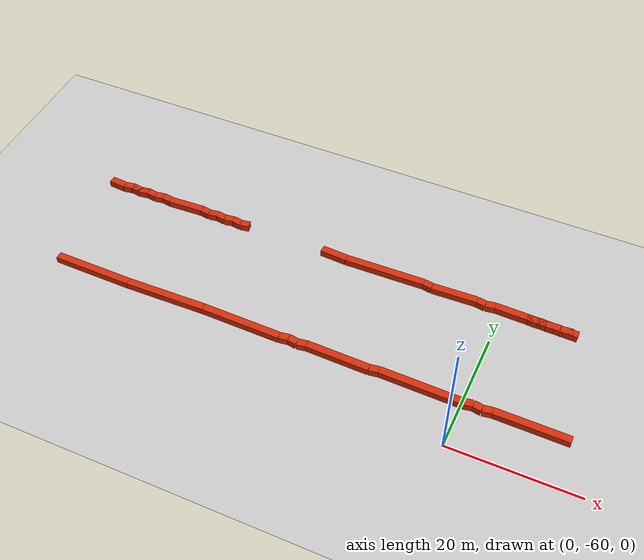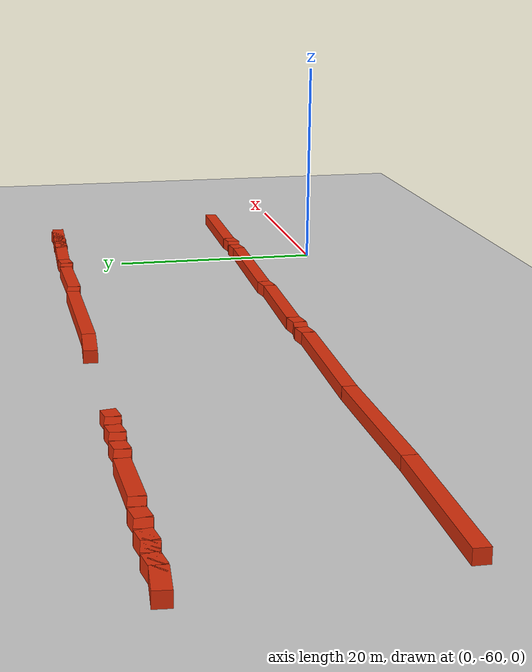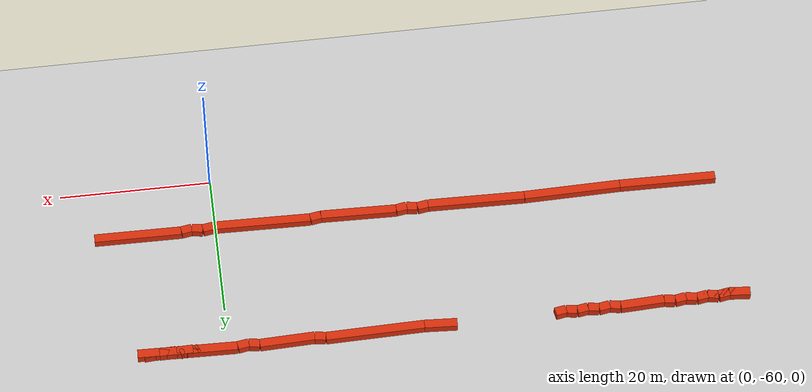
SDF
<sdf version="1.6">
 <world name="default">
  <include><uri>model://ground_plane</uri></include>
  <model name="track_inner_guardrail">
   <static>true</static>
   <link name="seg_001">
    <pose>-67.07 -34.06 0.55 0 0 -0.0841</pose>
    <collision name="col"><geometry><box><size>2.74 1.20 1.1</size></box></geometry></collision>
    <visual name="vis">
     <geometry><box><size>2.74 1.20 1.1</size></box></geometry>
     <material>
      <ambient>0.35 0.08 0.02 1</ambient>
      <diffuse>0.85 0.18 0.04 1</diffuse>
      <specular>0.2 0.2 0.2 1</specular>
     </material>
    </visual>
   </link>
   <link name="seg_002">
    <pose>-64.99 -34.04 0.55 0 0 0.1797</pose>
    <collision name="col"><geometry><box><size>1.47 1.20 1.1</size></box></geometry></collision>
    <visual name="vis">
     <geometry><box><size>1.47 1.20 1.1</size></box></geometry>
     <material>
      <ambient>0.35 0.08 0.02 1</ambient>
      <diffuse>0.85 0.18 0.04 1</diffuse>
      <specular>0.2 0.2 0.2 1</specular>
     </material>
    </visual>
   </link>
   <link name="seg_003">
    <pose>-63.54 -34.03 0.55 0 0 -0.1643</pose>
    <collision name="col"><geometry><box><size>1.47 1.20 1.1</size></box></geometry></collision>
    <visual name="vis">
     <geometry><box><size>1.47 1.20 1.1</size></box></geometry>
     <material>
      <ambient>0.35 0.08 0.02 1</ambient>
      <diffuse>0.85 0.18 0.04 1</diffuse>
      <specular>0.2 0.2 0.2 1</specular>
     </material>
    </visual>
   </link>
   <link name="seg_004">
    <pose>-62.10 -34.02 0.55 0 0 0.1773</pose>
    <collision name="col"><geometry><box><size>1.46 1.20 1.1</size></box></geometry></collision>
    <visual name="vis">
     <geometry><box><size>1.46 1.20 1.1</size></box></geometry>
     <material>
      <ambient>0.35 0.08 0.02 1</ambient>
      <diffuse>0.85 0.18 0.04 1</diffuse>
      <specular>0.2 0.2 0.2 1</specular>
     </material>
    </visual>
   </link>
   <link name="seg_005">
    <pose>-60.66 -34.01 0.55 0 0 -0.1672</pose>
    <collision name="col"><geometry><box><size>1.46 1.20 1.1</size></box></geometry></collision>
    <visual name="vis">
     <geometry><box><size>1.46 1.20 1.1</size></box></geometry>
     <material>
      <ambient>0.35 0.08 0.02 1</ambient>
      <diffuse>0.85 0.18 0.04 1</diffuse>
      <specular>0.2 0.2 0.2 1</specular>
     </material>
    </visual>
   </link>
   <link name="seg_006">
    <pose>-59.22 -34.01 0.55 0 0 0.1763</pose>
    <collision name="col"><geometry><box><size>1.46 1.20 1.1</size></box></geometry></collision>
    <visual name="vis">
     <geometry><box><size>1.46 1.20 1.1</size></box></geometry>
     <material>
      <ambient>0.35 0.08 0.02 1</ambient>
      <diffuse>0.85 0.18 0.04 1</diffuse>
      <specular>0.2 0.2 0.2 1</specular>
     </material>
    </visual>
   </link>
   <link name="seg_007">
    <pose>-57.78 -34.00 0.55 0 0 -0.1686</pose>
    <collision name="col"><geometry><box><size>1.46 1.20 1.1</size></box></geometry></collision>
    <visual name="vis">
     <geometry><box><size>1.46 1.20 1.1</size></box></geometry>
     <material>
      <ambient>0.35 0.08 0.02 1</ambient>
      <diffuse>0.85 0.18 0.04 1</diffuse>
      <specular>0.2 0.2 0.2 1</specular>
     </material>
    </visual>
   </link>
   <link name="seg_008">
    <pose>-54.19 -33.99 0.55 0 0 0.0454</pose>
    <collision name="col"><geometry><box><size>5.75 1.20 1.1</size></box></geometry></collision>
    <visual name="vis">
     <geometry><box><size>5.75 1.20 1.1</size></box></geometry>
     <material>
      <ambient>0.35 0.08 0.02 1</ambient>
      <diffuse>0.85 0.18 0.04 1</diffuse>
      <specular>0.2 0.2 0.2 1</specular>
     </material>
    </visual>
   </link>
   <link name="seg_009">
    <pose>-50.60 -33.99 0.55 0 0 -0.1711</pose>
    <collision name="col"><geometry><box><size>1.46 1.20 1.1</size></box></geometry></collision>
    <visual name="vis">
     <geometry><box><size>1.46 1.20 1.1</size></box></geometry>
     <material>
      <ambient>0.35 0.08 0.02 1</ambient>
      <diffuse>0.85 0.18 0.04 1</diffuse>
      <specular>0.2 0.2 0.2 1</specular>
     </material>
    </visual>
   </link>
   <link name="seg_010">
    <pose>-49.16 -33.99 0.55 0 0 0.1728</pose>
    <collision name="col"><geometry><box><size>1.46 1.20 1.1</size></box></geometry></collision>
    <visual name="vis">
     <geometry><box><size>1.46 1.20 1.1</size></box></geometry>
     <material>
      <ambient>0.35 0.08 0.02 1</ambient>
      <diffuse>0.85 0.18 0.04 1</diffuse>
      <specular>0.2 0.2 0.2 1</specular>
     </material>
    </visual>
   </link>
   <link name="seg_011">
    <pose>-47.73 -33.99 0.55 0 0 -0.1725</pose>
    <collision name="col"><geometry><box><size>1.46 1.20 1.1</size></box></geometry></collision>
    <visual name="vis">
     <geometry><box><size>1.46 1.20 1.1</size></box></geometry>
     <material>
      <ambient>0.35 0.08 0.02 1</ambient>
      <diffuse>0.85 0.18 0.04 1</diffuse>
      <specular>0.2 0.2 0.2 1</specular>
     </material>
    </visual>
   </link>
   <link name="seg_012">
    <pose>-46.30 -33.99 0.55 0 0 0.1732</pose>
    <collision name="col"><geometry><box><size>1.45 1.20 1.1</size></box></geometry></collision>
    <visual name="vis">
     <geometry><box><size>1.45 1.20 1.1</size></box></geometry>
     <material>
      <ambient>0.35 0.08 0.02 1</ambient>
      <diffuse>0.85 0.18 0.04 1</diffuse>
      <specular>0.2 0.2 0.2 1</specular>
     </material>
    </visual>
   </link>
   <link name="seg_013">
    <pose>-44.86 -33.99 0.55 0 0 -0.1718</pose>
    <collision name="col"><geometry><box><size>1.46 1.20 1.1</size></box></geometry></collision>
    <visual name="vis">
     <geometry><box><size>1.46 1.20 1.1</size></box></geometry>
     <material>
      <ambient>0.35 0.08 0.02 1</ambient>
      <diffuse>0.85 0.18 0.04 1</diffuse>
      <specular>0.2 0.2 0.2 1</specular>
     </material>
    </visual>
   </link>
   <link name="seg_014">
    <pose>-43.43 -33.99 0.55 0 0 0.1718</pose>
    <collision name="col"><geometry><box><size>1.46 1.20 1.1</size></box></geometry></collision>
    <visual name="vis">
     <geometry><box><size>1.46 1.20 1.1</size></box></geometry>
     <material>
      <ambient>0.35 0.08 0.02 1</ambient>
      <diffuse>0.85 0.18 0.04 1</diffuse>
      <specular>0.2 0.2 0.2 1</specular>
     </material>
    </visual>
   </link>
   <link name="seg_016">
    <pose>-27.68 -33.98 0.55 0 0 -0.0575</pose>
    <collision name="col"><geometry><box><size>4.30 1.20 1.1</size></box></geometry></collision>
    <visual name="vis">
     <geometry><box><size>4.30 1.20 1.1</size></box></geometry>
     <material>
      <ambient>0.35 0.08 0.02 1</ambient>
      <diffuse>0.85 0.18 0.04 1</diffuse>
      <specular>0.2 0.2 0.2 1</specular>
     </material>
    </visual>
   </link>
   <link name="seg_017">
    <pose>-19.10 -33.97 0.55 0 0 0.0207</pose>
    <collision name="col"><geometry><box><size>12.89 1.20 1.1</size></box></geometry></collision>
    <visual name="vis">
     <geometry><box><size>12.89 1.20 1.1</size></box></geometry>
     <material>
      <ambient>0.35 0.08 0.02 1</ambient>
      <diffuse>0.85 0.18 0.04 1</diffuse>
      <specular>0.2 0.2 0.2 1</specular>
     </material>
    </visual>
   </link>
   <link name="seg_018">
    <pose>-11.94 -33.96 0.55 0 0 -0.1715</pose>
    <collision name="col"><geometry><box><size>1.45 1.20 1.1</size></box></geometry></collision>
    <visual name="vis">
     <geometry><box><size>1.45 1.20 1.1</size></box></geometry>
     <material>
      <ambient>0.35 0.08 0.02 1</ambient>
      <diffuse>0.85 0.18 0.04 1</diffuse>
      <specular>0.2 0.2 0.2 1</specular>
     </material>
    </visual>
   </link>
   <link name="seg_019">
    <pose>-7.63 -33.96 0.55 0 0 0.0351</pose>
    <collision name="col"><geometry><box><size>7.18 1.20 1.1</size></box></geometry></collision>
    <visual name="vis">
     <geometry><box><size>7.18 1.20 1.1</size></box></geometry>
     <material>
      <ambient>0.35 0.08 0.02 1</ambient>
      <diffuse>0.85 0.18 0.04 1</diffuse>
      <specular>0.2 0.2 0.2 1</specular>
     </material>
    </visual>
   </link>
   <link name="seg_020">
    <pose>-3.33 -33.96 0.55 0 0 -0.1732</pose>
    <collision name="col"><geometry><box><size>1.46 1.20 1.1</size></box></geometry></collision>
    <visual name="vis">
     <geometry><box><size>1.46 1.20 1.1</size></box></geometry>
     <material>
      <ambient>0.35 0.08 0.02 1</ambient>
      <diffuse>0.85 0.18 0.04 1</diffuse>
      <specular>0.2 0.2 0.2 1</specular>
     </material>
    </visual>
   </link>
   <link name="seg_021">
    <pose>-1.89 -33.96 0.55 0 0 0.1707</pose>
    <collision name="col"><geometry><box><size>1.46 1.20 1.1</size></box></geometry></collision>
    <visual name="vis">
     <geometry><box><size>1.46 1.20 1.1</size></box></geometry>
     <material>
      <ambient>0.35 0.08 0.02 1</ambient>
      <diffuse>0.85 0.18 0.04 1</diffuse>
      <specular>0.2 0.2 0.2 1</specular>
     </material>
    </visual>
   </link>
   <link name="seg_022">
    <pose>5.30 -33.99 0.55 0 0 -0.0240</pose>
    <collision name="col"><geometry><box><size>12.95 1.20 1.1</size></box></geometry></collision>
    <visual name="vis">
     <geometry><box><size>12.95 1.20 1.1</size></box></geometry>
     <material>
      <ambient>0.35 0.08 0.02 1</ambient>
      <diffuse>0.85 0.18 0.04 1</diffuse>
      <specular>0.2 0.2 0.2 1</specular>
     </material>
    </visual>
   </link>
   <link name="seg_043">
    <pose>6.07 -33.97 0.55 0 0 -2.7241</pose>
    <collision name="col"><geometry><box><size>0.57 1.20 1.1</size></box></geometry></collision>
    <visual name="vis">
     <geometry><box><size>0.57 1.20 1.1</size></box></geometry>
     <material>
      <ambient>0.35 0.08 0.02 1</ambient>
      <diffuse>0.85 0.18 0.04 1</diffuse>
      <specular>0.2 0.2 0.2 1</specular>
     </material>
    </visual>
   </link>
   <link name="seg_044">
    <pose>5.46 -34.00 0.55 0 0 -2.7241</pose>
    <collision name="col"><geometry><box><size>0.45 1.20 1.1</size></box></geometry></collision>
    <visual name="vis">
     <geometry><box><size>0.45 1.20 1.1</size></box></geometry>
     <material>
      <ambient>0.35 0.08 0.02 1</ambient>
      <diffuse>0.85 0.18 0.04 1</diffuse>
      <specular>0.2 0.2 0.2 1</specular>
     </material>
    </visual>
   </link>
   <link name="seg_048">
    <pose>4.01 -34.02 0.55 0 0 0.3904</pose>
    <collision name="col"><geometry><box><size>0.33 1.20 1.1</size></box></geometry></collision>
    <visual name="vis">
     <geometry><box><size>0.33 1.20 1.1</size></box></geometry>
     <material>
      <ambient>0.35 0.08 0.02 1</ambient>
      <diffuse>0.85 0.18 0.04 1</diffuse>
      <specular>0.2 0.2 0.2 1</specular>
     </material>
    </visual>
   </link>
   <link name="seg_049">
    <pose>4.41 -33.99 0.55 0 0 1.2462</pose>
    <collision name="col"><geometry><box><size>0.23 1.20 1.1</size></box></geometry></collision>
    <visual name="vis">
     <geometry><box><size>0.23 1.20 1.1</size></box></geometry>
     <material>
      <ambient>0.35 0.08 0.02 1</ambient>
      <diffuse>0.85 0.18 0.04 1</diffuse>
      <specular>0.2 0.2 0.2 1</specular>
     </material>
    </visual>
   </link>
   <link name="seg_050">
    <pose>5.66 -34.02 0.55 0 0 0.0243</pose>
    <collision name="col"><geometry><box><size>2.12 1.20 1.1</size></box></geometry></collision>
    <visual name="vis">
     <geometry><box><size>2.12 1.20 1.1</size></box></geometry>
     <material>
      <ambient>0.35 0.08 0.02 1</ambient>
      <diffuse>0.85 0.18 0.04 1</diffuse>
      <specular>0.2 0.2 0.2 1</specular>
     </material>
    </visual>
   </link>
   <link name="seg_051">
    <pose>7.89 -34.06 0.55 0 0 0.0243</pose>
    <collision name="col"><geometry><box><size>2.12 1.20 1.1</size></box></geometry></collision>
    <visual name="vis">
     <geometry><box><size>2.12 1.20 1.1</size></box></geometry>
     <material>
      <ambient>0.35 0.08 0.02 1</ambient>
      <diffuse>0.85 0.18 0.04 1</diffuse>
      <specular>0.2 0.2 0.2 1</specular>
     </material>
    </visual>
   </link>
   <link name="seg_052">
    <pose>10.01 -34.05 0.55 0 0 0.0766</pose>
    <collision name="col"><geometry><box><size>1.89 1.20 1.1</size></box></geometry></collision>
    <visual name="vis">
     <geometry><box><size>1.89 1.20 1.1</size></box></geometry>
     <material>
      <ambient>0.35 0.08 0.02 1</ambient>
      <diffuse>0.85 0.18 0.04 1</diffuse>
      <specular>0.2 0.2 0.2 1</specular>
     </material>
    </visual>
   </link>
   <link name="seg_253">
    <pose>-62.09 -34.07 0.55 0 0 2.3767</pose>
    <collision name="col"><geometry><box><size>0.12 1.20 1.1</size></box></geometry></collision>
    <visual name="vis">
     <geometry><box><size>0.12 1.20 1.1</size></box></geometry>
     <material>
      <ambient>0.35 0.08 0.02 1</ambient>
      <diffuse>0.85 0.18 0.04 1</diffuse>
      <specular>0.2 0.2 0.2 1</specular>
     </material>
    </visual>
   </link>
   <link name="seg_254">
    <pose>-62.91 -34.11 0.55 0 0 2.3767</pose>
    <collision name="col"><geometry><box><size>0.12 1.20 1.1</size></box></geometry></collision>
    <visual name="vis">
     <geometry><box><size>0.12 1.20 1.1</size></box></geometry>
     <material>
      <ambient>0.35 0.08 0.02 1</ambient>
      <diffuse>0.85 0.18 0.04 1</diffuse>
      <specular>0.2 0.2 0.2 1</specular>
     </material>
    </visual>
   </link>
   <link name="seg_255">
    <pose>-63.50 -34.11 0.55 0 0 2.3767</pose>
    <collision name="col"><geometry><box><size>0.12 1.20 1.1</size></box></geometry></collision>
    <visual name="vis">
     <geometry><box><size>0.12 1.20 1.1</size></box></geometry>
     <material>
      <ambient>0.35 0.08 0.02 1</ambient>
      <diffuse>0.85 0.18 0.04 1</diffuse>
      <specular>0.2 0.2 0.2 1</specular>
     </material>
    </visual>
   </link>
   <link name="seg_256">
    <pose>-64.08 -34.10 0.55 0 0 2.3767</pose>
    <collision name="col"><geometry><box><size>0.12 1.20 1.1</size></box></geometry></collision>
    <visual name="vis">
     <geometry><box><size>0.12 1.20 1.1</size></box></geometry>
     <material>
      <ambient>0.35 0.08 0.02 1</ambient>
      <diffuse>0.85 0.18 0.04 1</diffuse>
      <specular>0.2 0.2 0.2 1</specular>
     </material>
    </visual>
   </link>
   <link name="seg_257">
    <pose>-64.66 -34.10 0.55 0 0 2.3767</pose>
    <collision name="col"><geometry><box><size>0.12 1.20 1.1</size></box></geometry></collision>
    <visual name="vis">
     <geometry><box><size>0.12 1.20 1.1</size></box></geometry>
     <material>
      <ambient>0.35 0.08 0.02 1</ambient>
      <diffuse>0.85 0.18 0.04 1</diffuse>
      <specular>0.2 0.2 0.2 1</specular>
     </material>
    </visual>
   </link>
   <link name="seg_258">
    <pose>-65.24 -34.09 0.55 0 0 2.3767</pose>
    <collision name="col"><geometry><box><size>0.12 1.20 1.1</size></box></geometry></collision>
    <visual name="vis">
     <geometry><box><size>0.12 1.20 1.1</size></box></geometry>
     <material>
      <ambient>0.35 0.08 0.02 1</ambient>
      <diffuse>0.85 0.18 0.04 1</diffuse>
      <specular>0.2 0.2 0.2 1</specular>
     </material>
    </visual>
   </link>
   <link name="seg_259">
    <pose>-66.07 -34.13 0.55 0 0 2.3767</pose>
    <collision name="col"><geometry><box><size>0.12 1.20 1.1</size></box></geometry></collision>
    <visual name="vis">
     <geometry><box><size>0.12 1.20 1.1</size></box></geometry>
     <material>
      <ambient>0.35 0.08 0.02 1</ambient>
      <diffuse>0.85 0.18 0.04 1</diffuse>
      <specular>0.2 0.2 0.2 1</specular>
     </material>
    </visual>
   </link>
  </model>
  <model name="track_outer_guardrail">
   <static>true</static>
   <link name="seg_002">
    <pose>-60.57 -52.48 0.55 0 0 -0.0141</pose>
    <collision name="col"><geometry><box><size>12.84 1.20 1.1</size></box></geometry></collision>
    <visual name="vis">
     <geometry><box><size>12.84 1.20 1.1</size></box></geometry>
     <material>
      <ambient>0.35 0.08 0.02 1</ambient>
      <diffuse>0.85 0.18 0.04 1</diffuse>
      <specular>0.2 0.2 0.2 1</specular>
     </material>
    </visual>
   </link>
   <link name="seg_003">
    <pose>-47.72 -52.44 0.55 0 0 0.0200</pose>
    <collision name="col"><geometry><box><size>12.87 1.20 1.1</size></box></geometry></collision>
    <visual name="vis">
     <geometry><box><size>12.87 1.20 1.1</size></box></geometry>
     <material>
      <ambient>0.35 0.08 0.02 1</ambient>
      <diffuse>0.85 0.18 0.04 1</diffuse>
      <specular>0.2 0.2 0.2 1</specular>
     </material>
    </visual>
   </link>
   <link name="seg_004">
    <pose>-34.84 -52.43 0.55 0 0 -0.0192</pose>
    <collision name="col"><geometry><box><size>12.89 1.20 1.1</size></box></geometry></collision>
    <visual name="vis">
     <geometry><box><size>12.89 1.20 1.1</size></box></geometry>
     <material>
      <ambient>0.35 0.08 0.02 1</ambient>
      <diffuse>0.85 0.18 0.04 1</diffuse>
      <specular>0.2 0.2 0.2 1</specular>
     </material>
    </visual>
   </link>
   <link name="seg_005">
    <pose>-27.67 -52.43 0.55 0 0 0.1728</pose>
    <collision name="col"><geometry><box><size>1.46 1.20 1.1</size></box></geometry></collision>
    <visual name="vis">
     <geometry><box><size>1.46 1.20 1.1</size></box></geometry>
     <material>
      <ambient>0.35 0.08 0.02 1</ambient>
      <diffuse>0.85 0.18 0.04 1</diffuse>
      <specular>0.2 0.2 0.2 1</specular>
     </material>
    </visual>
   </link>
   <link name="seg_006">
    <pose>-26.24 -52.43 0.55 0 0 -0.1715</pose>
    <collision name="col"><geometry><box><size>1.45 1.20 1.1</size></box></geometry></collision>
    <visual name="vis">
     <geometry><box><size>1.45 1.20 1.1</size></box></geometry>
     <material>
      <ambient>0.35 0.08 0.02 1</ambient>
      <diffuse>0.85 0.18 0.04 1</diffuse>
      <specular>0.2 0.2 0.2 1</specular>
     </material>
    </visual>
   </link>
   <link name="seg_007">
    <pose>-24.80 -52.43 0.55 0 0 0.1735</pose>
    <collision name="col"><geometry><box><size>1.45 1.20 1.1</size></box></geometry></collision>
    <visual name="vis">
     <geometry><box><size>1.45 1.20 1.1</size></box></geometry>
     <material>
      <ambient>0.35 0.08 0.02 1</ambient>
      <diffuse>0.85 0.18 0.04 1</diffuse>
      <specular>0.2 0.2 0.2 1</specular>
     </material>
    </visual>
   </link>
   <link name="seg_008">
    <pose>-19.08 -52.42 0.55 0 0 -0.0234</pose>
    <collision name="col"><geometry><box><size>10.03 1.20 1.1</size></box></geometry></collision>
    <visual name="vis">
     <geometry><box><size>10.03 1.20 1.1</size></box></geometry>
     <material>
      <ambient>0.35 0.08 0.02 1</ambient>
      <diffuse>0.85 0.18 0.04 1</diffuse>
      <specular>0.2 0.2 0.2 1</specular>
     </material>
    </visual>
   </link>
   <link name="seg_009">
    <pose>-13.35 -52.41 0.55 0 0 0.1739</pose>
    <collision name="col"><geometry><box><size>1.45 1.20 1.1</size></box></geometry></collision>
    <visual name="vis">
     <geometry><box><size>1.45 1.20 1.1</size></box></geometry>
     <material>
      <ambient>0.35 0.08 0.02 1</ambient>
      <diffuse>0.85 0.18 0.04 1</diffuse>
      <specular>0.2 0.2 0.2 1</specular>
     </material>
    </visual>
   </link>
   <link name="seg_010">
    <pose>-6.21 -52.41 0.55 0 0 -0.0196</pose>
    <collision name="col"><geometry><box><size>12.86 1.20 1.1</size></box></geometry></collision>
    <visual name="vis">
     <geometry><box><size>12.86 1.20 1.1</size></box></geometry>
     <material>
      <ambient>0.35 0.08 0.02 1</ambient>
      <diffuse>0.85 0.18 0.04 1</diffuse>
      <specular>0.2 0.2 0.2 1</specular>
     </material>
    </visual>
   </link>
   <link name="seg_011">
    <pose>0.94 -52.42 0.55 0 0 0.1704</pose>
    <collision name="col"><geometry><box><size>1.45 1.20 1.1</size></box></geometry></collision>
    <visual name="vis">
     <geometry><box><size>1.45 1.20 1.1</size></box></geometry>
     <material>
      <ambient>0.35 0.08 0.02 1</ambient>
      <diffuse>0.85 0.18 0.04 1</diffuse>
      <specular>0.2 0.2 0.2 1</specular>
     </material>
    </visual>
   </link>
   <link name="seg_012">
    <pose>2.36 -52.42 0.55 0 0 -0.1764</pose>
    <collision name="col"><geometry><box><size>1.45 1.20 1.1</size></box></geometry></collision>
    <visual name="vis">
     <geometry><box><size>1.45 1.20 1.1</size></box></geometry>
     <material>
      <ambient>0.35 0.08 0.02 1</ambient>
      <diffuse>0.85 0.18 0.04 1</diffuse>
      <specular>0.2 0.2 0.2 1</specular>
     </material>
    </visual>
   </link>
   <link name="seg_013">
    <pose>3.79 -52.43 0.55 0 0 0.1694</pose>
    <collision name="col"><geometry><box><size>1.45 1.20 1.1</size></box></geometry></collision>
    <visual name="vis">
     <geometry><box><size>1.45 1.20 1.1</size></box></geometry>
     <material>
      <ambient>0.35 0.08 0.02 1</ambient>
      <diffuse>0.85 0.18 0.04 1</diffuse>
      <specular>0.2 0.2 0.2 1</specular>
     </material>
    </visual>
   </link>
   <link name="seg_014">
    <pose>10.23 -52.37 0.55 0 0 -0.0110</pose>
    <collision name="col"><geometry><box><size>11.46 1.20 1.1</size></box></geometry></collision>
    <visual name="vis">
     <geometry><box><size>11.46 1.20 1.1</size></box></geometry>
     <material>
      <ambient>0.35 0.08 0.02 1</ambient>
      <diffuse>0.85 0.18 0.04 1</diffuse>
      <specular>0.2 0.2 0.2 1</specular>
     </material>
    </visual>
   </link>
  </model>
 </world>
</sdf>
